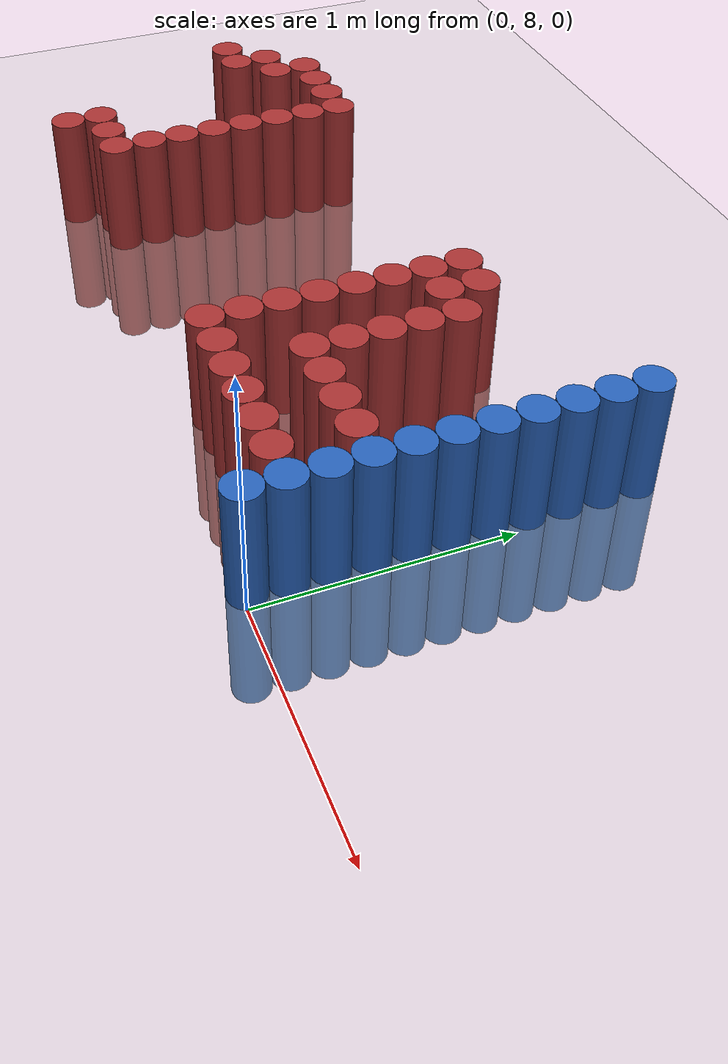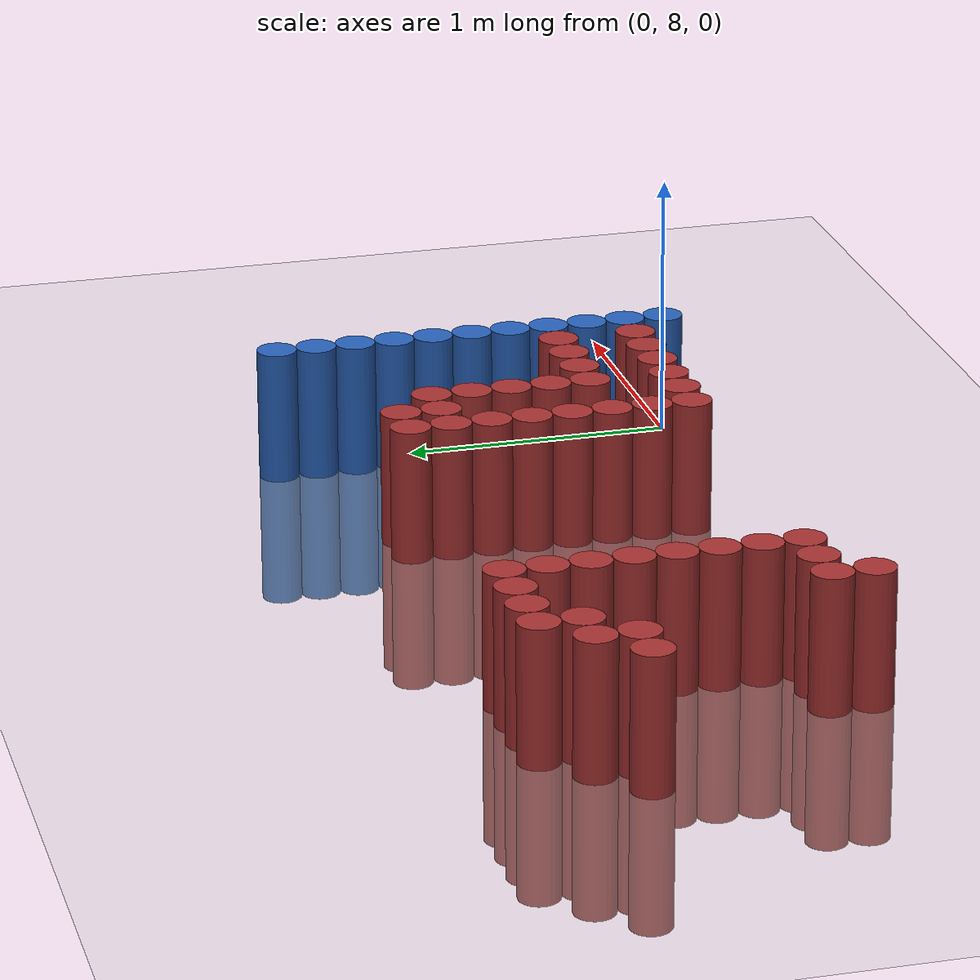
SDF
<sdf version="1.6">
 <world name="default">
  <model name="ground_plane">
   <static>1</static>
   <link name="link">
    <collision name="collision">
     <geometry><plane><normal>0 0 1</normal><size>100 100</size></plane></geometry>
     <surface><friction><ode><mu>100</mu><mu2>50</mu2></ode></friction></surface>
    </collision>
    <visual name="visual">
     <cast_shadows>0</cast_shadows>
     <geometry><plane><normal>0 0 1</normal><size>100 100</size></plane></geometry>
     <material>
      <script><uri>file://media/materials/scripts/gazebo.material</uri><name>Gazebo/Grey</name></script>
     </material>
    </visual>
   </link>
  </model>
  <model name="unit_cylinder_152">
   <static>1</static>
   <pose>-3.075000 8.925000 0.000000 0.000000 0.000000 0.000000</pose>
   <link name="link">
    <inertial>
     <mass>1</mass>
     <inertia><ixx>0.145833</ixx><ixy>0</ixy><ixz>0</ixz><iyy>0.145833</iyy><iyz>0</iyz><izz>0.125</izz></inertia>
    </inertial>
    <collision name="collision">
     <geometry><cylinder><radius>0.075000</radius><length>1</length></cylinder></geometry>
    </collision>
    <visual name="visual">
     <geometry><cylinder><radius>0.075000</radius><length>1</length></cylinder></geometry>
     <material>
      <ambient>0.648000 0.192000 0.192000 1</ambient>
      <diffuse>0.648000 0.192000 0.192000 1</diffuse>
     </material>
     <material>
      <script><name>Gazebo/Grey</name><uri>file://media/materials/scripts/gazebo.material</uri></script>
     </material>
    </visual>
   </link>
  </model>
  <model name="unit_cylinder_154">
   <static>1</static>
   <pose>-2.925000 8.925000 0.000000 0.000000 0.000000 0.000000</pose>
   <link name="link">
    <inertial>
     <mass>1</mass>
     <inertia><ixx>0.145833</ixx><ixy>0</ixy><ixz>0</ixz><iyy>0.145833</iyy><iyz>0</iyz><izz>0.125</izz></inertia>
    </inertial>
    <collision name="collision">
     <geometry><cylinder><radius>0.075000</radius><length>1</length></cylinder></geometry>
    </collision>
    <visual name="visual">
     <geometry><cylinder><radius>0.075000</radius><length>1</length></cylinder></geometry>
     <material>
      <ambient>0.648000 0.192000 0.192000 1</ambient>
      <diffuse>0.648000 0.192000 0.192000 1</diffuse>
     </material>
     <material>
      <script><name>Gazebo/Grey</name><uri>file://media/materials/scripts/gazebo.material</uri></script>
     </material>
    </visual>
   </link>
  </model>
  <model name="unit_cylinder_155">
   <static>1</static>
   <pose>-2.925000 9.075000 0.000000 0.000000 0.000000 0.000000</pose>
   <link name="link">
    <inertial>
     <mass>1</mass>
     <inertia><ixx>0.145833</ixx><ixy>0</ixy><ixz>0</ixz><iyy>0.145833</iyy><iyz>0</iyz><izz>0.125</izz></inertia>
    </inertial>
    <collision name="collision">
     <geometry><cylinder><radius>0.075000</radius><length>1</length></cylinder></geometry>
    </collision>
    <visual name="visual">
     <geometry><cylinder><radius>0.075000</radius><length>1</length></cylinder></geometry>
     <material>
      <ambient>0.648000 0.192000 0.192000 1</ambient>
      <diffuse>0.648000 0.192000 0.192000 1</diffuse>
     </material>
     <material>
      <script><name>Gazebo/Grey</name><uri>file://media/materials/scripts/gazebo.material</uri></script>
     </material>
    </visual>
   </link>
  </model>
  <model name="unit_cylinder_167">
   <static>1</static>
   <pose>-2.775000 9.075000 0.000000 0.000000 0.000000 0.000000</pose>
   <link name="link">
    <inertial>
     <mass>1</mass>
     <inertia><ixx>0.145833</ixx><ixy>0</ixy><ixz>0</ixz><iyy>0.145833</iyy><iyz>0</iyz><izz>0.125</izz></inertia>
    </inertial>
    <collision name="collision">
     <geometry><cylinder><radius>0.075000</radius><length>1</length></cylinder></geometry>
    </collision>
    <visual name="visual">
     <geometry><cylinder><radius>0.075000</radius><length>1</length></cylinder></geometry>
     <material>
      <ambient>0.648000 0.192000 0.192000 1</ambient>
      <diffuse>0.648000 0.192000 0.192000 1</diffuse>
     </material>
     <material>
      <script><name>Gazebo/Grey</name><uri>file://media/materials/scripts/gazebo.material</uri></script>
     </material>
    </visual>
   </link>
  </model>
  <model name="unit_cylinder_168">
   <static>1</static>
   <pose>-2.775000 9.225000 0.000000 0.000000 0.000000 0.000000</pose>
   <link name="link">
    <inertial>
     <mass>1</mass>
     <inertia><ixx>0.145833</ixx><ixy>0</ixy><ixz>0</ixz><iyy>0.145833</iyy><iyz>0</iyz><izz>0.125</izz></inertia>
    </inertial>
    <collision name="collision">
     <geometry><cylinder><radius>0.075000</radius><length>1</length></cylinder></geometry>
    </collision>
    <visual name="visual">
     <geometry><cylinder><radius>0.075000</radius><length>1</length></cylinder></geometry>
     <material>
      <ambient>0.648000 0.192000 0.192000 1</ambient>
      <diffuse>0.648000 0.192000 0.192000 1</diffuse>
     </material>
     <material>
      <script><name>Gazebo/Grey</name><uri>file://media/materials/scripts/gazebo.material</uri></script>
     </material>
    </visual>
   </link>
  </model>
  <model name="unit_cylinder_174">
   <static>1</static>
   <pose>-2.625000 8.025000 0.000000 0.000000 0.000000 0.000000</pose>
   <link name="link">
    <inertial>
     <mass>1</mass>
     <inertia><ixx>0.145833</ixx><ixy>0</ixy><ixz>0</ixz><iyy>0.145833</iyy><iyz>0</iyz><izz>0.125</izz></inertia>
    </inertial>
    <collision name="collision">
     <geometry><cylinder><radius>0.075000</radius><length>1</length></cylinder></geometry>
    </collision>
    <visual name="visual">
     <geometry><cylinder><radius>0.075000</radius><length>1</length></cylinder></geometry>
     <material>
      <ambient>0.648000 0.192000 0.192000 1</ambient>
      <diffuse>0.648000 0.192000 0.192000 1</diffuse>
     </material>
     <material>
      <script><name>Gazebo/Grey</name><uri>file://media/materials/scripts/gazebo.material</uri></script>
     </material>
    </visual>
   </link>
  </model>
  <model name="unit_cylinder_175">
   <static>1</static>
   <pose>-2.625000 8.175000 0.000000 0.000000 0.000000 0.000000</pose>
   <link name="link">
    <inertial>
     <mass>1</mass>
     <inertia><ixx>0.145833</ixx><ixy>0</ixy><ixz>0</ixz><iyy>0.145833</iyy><iyz>0</iyz><izz>0.125</izz></inertia>
    </inertial>
    <collision name="collision">
     <geometry><cylinder><radius>0.075000</radius><length>1</length></cylinder></geometry>
    </collision>
    <visual name="visual">
     <geometry><cylinder><radius>0.075000</radius><length>1</length></cylinder></geometry>
     <material>
      <ambient>0.648000 0.192000 0.192000 1</ambient>
      <diffuse>0.648000 0.192000 0.192000 1</diffuse>
     </material>
     <material>
      <script><name>Gazebo/Grey</name><uri>file://media/materials/scripts/gazebo.material</uri></script>
     </material>
    </visual>
   </link>
  </model>
  <model name="unit_cylinder_176">
   <static>1</static>
   <pose>-2.625000 9.225000 0.000000 0.000000 0.000000 0.000000</pose>
   <link name="link">
    <inertial>
     <mass>1</mass>
     <inertia><ixx>0.145833</ixx><ixy>0</ixy><ixz>0</ixz><iyy>0.145833</iyy><iyz>0</iyz><izz>0.125</izz></inertia>
    </inertial>
    <collision name="collision">
     <geometry><cylinder><radius>0.075000</radius><length>1</length></cylinder></geometry>
    </collision>
    <visual name="visual">
     <geometry><cylinder><radius>0.075000</radius><length>1</length></cylinder></geometry>
     <material>
      <ambient>0.648000 0.192000 0.192000 1</ambient>
      <diffuse>0.648000 0.192000 0.192000 1</diffuse>
     </material>
     <material>
      <script><name>Gazebo/Grey</name><uri>file://media/materials/scripts/gazebo.material</uri></script>
     </material>
    </visual>
   </link>
  </model>
  <model name="unit_cylinder_177">
   <static>1</static>
   <pose>-2.475000 8.175000 0.000000 0.000000 0.000000 0.000000</pose>
   <link name="link">
    <inertial>
     <mass>1</mass>
     <inertia><ixx>0.145833</ixx><ixy>0</ixy><ixz>0</ixz><iyy>0.145833</iyy><iyz>0</iyz><izz>0.125</izz></inertia>
    </inertial>
    <collision name="collision">
     <geometry><cylinder><radius>0.075000</radius><length>1</length></cylinder></geometry>
    </collision>
    <visual name="visual">
     <geometry><cylinder><radius>0.075000</radius><length>1</length></cylinder></geometry>
     <material>
      <ambient>0.648000 0.192000 0.192000 1</ambient>
      <diffuse>0.648000 0.192000 0.192000 1</diffuse>
     </material>
     <material>
      <script><name>Gazebo/Grey</name><uri>file://media/materials/scripts/gazebo.material</uri></script>
     </material>
    </visual>
   </link>
  </model>
  <model name="unit_cylinder_178">
   <static>1</static>
   <pose>-2.475000 9.225000 0.000000 0.000000 0.000000 0.000000</pose>
   <link name="link">
    <inertial>
     <mass>1</mass>
     <inertia><ixx>0.145833</ixx><ixy>0</ixy><ixz>0</ixz><iyy>0.145833</iyy><iyz>0</iyz><izz>0.125</izz></inertia>
    </inertial>
    <collision name="collision">
     <geometry><cylinder><radius>0.075000</radius><length>1</length></cylinder></geometry>
    </collision>
    <visual name="visual">
     <geometry><cylinder><radius>0.075000</radius><length>1</length></cylinder></geometry>
     <material>
      <ambient>0.648000 0.192000 0.192000 1</ambient>
      <diffuse>0.648000 0.192000 0.192000 1</diffuse>
     </material>
     <material>
      <script><name>Gazebo/Grey</name><uri>file://media/materials/scripts/gazebo.material</uri></script>
     </material>
    </visual>
   </link>
  </model>
  <model name="unit_cylinder_179">
   <static>1</static>
   <pose>-2.325000 8.175000 0.000000 0.000000 0.000000 0.000000</pose>
   <link name="link">
    <inertial>
     <mass>1</mass>
     <inertia><ixx>0.145833</ixx><ixy>0</ixy><ixz>0</ixz><iyy>0.145833</iyy><iyz>0</iyz><izz>0.125</izz></inertia>
    </inertial>
    <collision name="collision">
     <geometry><cylinder><radius>0.075000</radius><length>1</length></cylinder></geometry>
    </collision>
    <visual name="visual">
     <geometry><cylinder><radius>0.075000</radius><length>1</length></cylinder></geometry>
     <material>
      <ambient>0.648000 0.192000 0.192000 1</ambient>
      <diffuse>0.648000 0.192000 0.192000 1</diffuse>
     </material>
     <material>
      <script><name>Gazebo/Grey</name><uri>file://media/materials/scripts/gazebo.material</uri></script>
     </material>
    </visual>
   </link>
  </model>
  <model name="unit_cylinder_180">
   <static>1</static>
   <pose>-2.325000 8.325000 0.000000 0.000000 0.000000 0.000000</pose>
   <link name="link">
    <inertial>
     <mass>1</mass>
     <inertia><ixx>0.145833</ixx><ixy>0</ixy><ixz>0</ixz><iyy>0.145833</iyy><iyz>0</iyz><izz>0.125</izz></inertia>
    </inertial>
    <collision name="collision">
     <geometry><cylinder><radius>0.075000</radius><length>1</length></cylinder></geometry>
    </collision>
    <visual name="visual">
     <geometry><cylinder><radius>0.075000</radius><length>1</length></cylinder></geometry>
     <material>
      <ambient>0.648000 0.192000 0.192000 1</ambient>
      <diffuse>0.648000 0.192000 0.192000 1</diffuse>
     </material>
     <material>
      <script><name>Gazebo/Grey</name><uri>file://media/materials/scripts/gazebo.material</uri></script>
     </material>
    </visual>
   </link>
  </model>
  <model name="unit_cylinder_181">
   <static>1</static>
   <pose>-2.325000 8.475000 0.000000 0.000000 0.000000 0.000000</pose>
   <link name="link">
    <inertial>
     <mass>1</mass>
     <inertia><ixx>0.145833</ixx><ixy>0</ixy><ixz>0</ixz><iyy>0.145833</iyy><iyz>0</iyz><izz>0.125</izz></inertia>
    </inertial>
    <collision name="collision">
     <geometry><cylinder><radius>0.075000</radius><length>1</length></cylinder></geometry>
    </collision>
    <visual name="visual">
     <geometry><cylinder><radius>0.075000</radius><length>1</length></cylinder></geometry>
     <material>
      <ambient>0.648000 0.192000 0.192000 1</ambient>
      <diffuse>0.648000 0.192000 0.192000 1</diffuse>
     </material>
     <material>
      <script><name>Gazebo/Grey</name><uri>file://media/materials/scripts/gazebo.material</uri></script>
     </material>
    </visual>
   </link>
  </model>
  <model name="unit_cylinder_182">
   <static>1</static>
   <pose>-2.325000 8.625000 0.000000 0.000000 0.000000 0.000000</pose>
   <link name="link">
    <inertial>
     <mass>1</mass>
     <inertia><ixx>0.145833</ixx><ixy>0</ixy><ixz>0</ixz><iyy>0.145833</iyy><iyz>0</iyz><izz>0.125</izz></inertia>
    </inertial>
    <collision name="collision">
     <geometry><cylinder><radius>0.075000</radius><length>1</length></cylinder></geometry>
    </collision>
    <visual name="visual">
     <geometry><cylinder><radius>0.075000</radius><length>1</length></cylinder></geometry>
     <material>
      <ambient>0.648000 0.192000 0.192000 1</ambient>
      <diffuse>0.648000 0.192000 0.192000 1</diffuse>
     </material>
     <material>
      <script><name>Gazebo/Grey</name><uri>file://media/materials/scripts/gazebo.material</uri></script>
     </material>
    </visual>
   </link>
  </model>
  <model name="unit_cylinder_183">
   <static>1</static>
   <pose>-2.325000 8.775000 0.000000 0.000000 0.000000 0.000000</pose>
   <link name="link">
    <inertial>
     <mass>1</mass>
     <inertia><ixx>0.145833</ixx><ixy>0</ixy><ixz>0</ixz><iyy>0.145833</iyy><iyz>0</iyz><izz>0.125</izz></inertia>
    </inertial>
    <collision name="collision">
     <geometry><cylinder><radius>0.075000</radius><length>1</length></cylinder></geometry>
    </collision>
    <visual name="visual">
     <geometry><cylinder><radius>0.075000</radius><length>1</length></cylinder></geometry>
     <material>
      <ambient>0.648000 0.192000 0.192000 1</ambient>
      <diffuse>0.648000 0.192000 0.192000 1</diffuse>
     </material>
     <material>
      <script><name>Gazebo/Grey</name><uri>file://media/materials/scripts/gazebo.material</uri></script>
     </material>
    </visual>
   </link>
  </model>
  <model name="unit_cylinder_184">
   <static>1</static>
   <pose>-2.325000 8.925000 0.000000 0.000000 0.000000 0.000000</pose>
   <link name="link">
    <inertial>
     <mass>1</mass>
     <inertia><ixx>0.145833</ixx><ixy>0</ixy><ixz>0</ixz><iyy>0.145833</iyy><iyz>0</iyz><izz>0.125</izz></inertia>
    </inertial>
    <collision name="collision">
     <geometry><cylinder><radius>0.075000</radius><length>1</length></cylinder></geometry>
    </collision>
    <visual name="visual">
     <geometry><cylinder><radius>0.075000</radius><length>1</length></cylinder></geometry>
     <material>
      <ambient>0.648000 0.192000 0.192000 1</ambient>
      <diffuse>0.648000 0.192000 0.192000 1</diffuse>
     </material>
     <material>
      <script><name>Gazebo/Grey</name><uri>file://media/materials/scripts/gazebo.material</uri></script>
     </material>
    </visual>
   </link>
  </model>
  <model name="unit_cylinder_185">
   <static>1</static>
   <pose>-2.325000 9.075000 0.000000 0.000000 0.000000 0.000000</pose>
   <link name="link">
    <inertial>
     <mass>1</mass>
     <inertia><ixx>0.145833</ixx><ixy>0</ixy><ixz>0</ixz><iyy>0.145833</iyy><iyz>0</iyz><izz>0.125</izz></inertia>
    </inertial>
    <collision name="collision">
     <geometry><cylinder><radius>0.075000</radius><length>1</length></cylinder></geometry>
    </collision>
    <visual name="visual">
     <geometry><cylinder><radius>0.075000</radius><length>1</length></cylinder></geometry>
     <material>
      <ambient>0.648000 0.192000 0.192000 1</ambient>
      <diffuse>0.648000 0.192000 0.192000 1</diffuse>
     </material>
     <material>
      <script><name>Gazebo/Grey</name><uri>file://media/materials/scripts/gazebo.material</uri></script>
     </material>
    </visual>
   </link>
  </model>
  <model name="unit_cylinder_186">
   <static>1</static>
   <pose>-2.325000 9.225000 0.000000 0.000000 0.000000 0.000000</pose>
   <link name="link">
    <inertial>
     <mass>1</mass>
     <inertia><ixx>0.145833</ixx><ixy>0</ixy><ixz>0</ixz><iyy>0.145833</iyy><iyz>0</iyz><izz>0.125</izz></inertia>
    </inertial>
    <collision name="collision">
     <geometry><cylinder><radius>0.075000</radius><length>1</length></cylinder></geometry>
    </collision>
    <visual name="visual">
     <geometry><cylinder><radius>0.075000</radius><length>1</length></cylinder></geometry>
     <material>
      <ambient>0.648000 0.192000 0.192000 1</ambient>
      <diffuse>0.648000 0.192000 0.192000 1</diffuse>
     </material>
     <material>
      <script><name>Gazebo/Grey</name><uri>file://media/materials/scripts/gazebo.material</uri></script>
     </material>
    </visual>
   </link>
  </model>
  <model name="unit_cylinder_187">
   <static>1</static>
   <pose>-0.975000 8.175000 0.000000 0.000000 0.000000 0.000000</pose>
   <link name="link">
    <inertial>
     <mass>1</mass>
     <inertia><ixx>0.145833</ixx><ixy>0</ixy><ixz>0</ixz><iyy>0.145833</iyy><iyz>0</iyz><izz>0.125</izz></inertia>
    </inertial>
    <collision name="collision">
     <geometry><cylinder><radius>0.075000</radius><length>1</length></cylinder></geometry>
    </collision>
    <visual name="visual">
     <geometry><cylinder><radius>0.075000</radius><length>1</length></cylinder></geometry>
     <material>
      <ambient>0.648000 0.192000 0.192000 1</ambient>
      <diffuse>0.648000 0.192000 0.192000 1</diffuse>
     </material>
     <material>
      <script><name>Gazebo/Grey</name><uri>file://media/materials/scripts/gazebo.material</uri></script>
     </material>
    </visual>
   </link>
  </model>
  <model name="unit_cylinder_188">
   <static>1</static>
   <pose>-0.975000 8.325000 0.000000 0.000000 0.000000 0.000000</pose>
   <link name="link">
    <inertial>
     <mass>1</mass>
     <inertia><ixx>0.145833</ixx><ixy>0</ixy><ixz>0</ixz><iyy>0.145833</iyy><iyz>0</iyz><izz>0.125</izz></inertia>
    </inertial>
    <collision name="collision">
     <geometry><cylinder><radius>0.075000</radius><length>1</length></cylinder></geometry>
    </collision>
    <visual name="visual">
     <geometry><cylinder><radius>0.075000</radius><length>1</length></cylinder></geometry>
     <material>
      <ambient>0.648000 0.192000 0.192000 1</ambient>
      <diffuse>0.648000 0.192000 0.192000 1</diffuse>
     </material>
     <material>
      <script><name>Gazebo/Grey</name><uri>file://media/materials/scripts/gazebo.material</uri></script>
     </material>
    </visual>
   </link>
  </model>
  <model name="unit_cylinder_189">
   <static>1</static>
   <pose>-0.975000 8.475000 0.000000 0.000000 0.000000 0.000000</pose>
   <link name="link">
    <inertial>
     <mass>1</mass>
     <inertia><ixx>0.145833</ixx><ixy>0</ixy><ixz>0</ixz><iyy>0.145833</iyy><iyz>0</iyz><izz>0.125</izz></inertia>
    </inertial>
    <collision name="collision">
     <geometry><cylinder><radius>0.075000</radius><length>1</length></cylinder></geometry>
    </collision>
    <visual name="visual">
     <geometry><cylinder><radius>0.075000</radius><length>1</length></cylinder></geometry>
     <material>
      <ambient>0.648000 0.192000 0.192000 1</ambient>
      <diffuse>0.648000 0.192000 0.192000 1</diffuse>
     </material>
     <material>
      <script><name>Gazebo/Grey</name><uri>file://media/materials/scripts/gazebo.material</uri></script>
     </material>
    </visual>
   </link>
  </model>
  <model name="unit_cylinder_190">
   <static>1</static>
   <pose>-0.975000 8.625000 0.000000 0.000000 0.000000 0.000000</pose>
   <link name="link">
    <inertial>
     <mass>1</mass>
     <inertia><ixx>0.145833</ixx><ixy>0</ixy><ixz>0</ixz><iyy>0.145833</iyy><iyz>0</iyz><izz>0.125</izz></inertia>
    </inertial>
    <collision name="collision">
     <geometry><cylinder><radius>0.075000</radius><length>1</length></cylinder></geometry>
    </collision>
    <visual name="visual">
     <geometry><cylinder><radius>0.075000</radius><length>1</length></cylinder></geometry>
     <material>
      <ambient>0.648000 0.192000 0.192000 1</ambient>
      <diffuse>0.648000 0.192000 0.192000 1</diffuse>
     </material>
     <material>
      <script><name>Gazebo/Grey</name><uri>file://media/materials/scripts/gazebo.material</uri></script>
     </material>
    </visual>
   </link>
  </model>
  <model name="unit_cylinder_191">
   <static>1</static>
   <pose>-0.975000 8.775000 0.000000 0.000000 0.000000 0.000000</pose>
   <link name="link">
    <inertial>
     <mass>1</mass>
     <inertia><ixx>0.145833</ixx><ixy>0</ixy><ixz>0</ixz><iyy>0.145833</iyy><iyz>0</iyz><izz>0.125</izz></inertia>
    </inertial>
    <collision name="collision">
     <geometry><cylinder><radius>0.075000</radius><length>1</length></cylinder></geometry>
    </collision>
    <visual name="visual">
     <geometry><cylinder><radius>0.075000</radius><length>1</length></cylinder></geometry>
     <material>
      <ambient>0.648000 0.192000 0.192000 1</ambient>
      <diffuse>0.648000 0.192000 0.192000 1</diffuse>
     </material>
     <material>
      <script><name>Gazebo/Grey</name><uri>file://media/materials/scripts/gazebo.material</uri></script>
     </material>
    </visual>
   </link>
  </model>
  <model name="unit_cylinder_192">
   <static>1</static>
   <pose>-0.975000 8.925000 0.000000 0.000000 0.000000 0.000000</pose>
   <link name="link">
    <inertial>
     <mass>1</mass>
     <inertia><ixx>0.145833</ixx><ixy>0</ixy><ixz>0</ixz><iyy>0.145833</iyy><iyz>0</iyz><izz>0.125</izz></inertia>
    </inertial>
    <collision name="collision">
     <geometry><cylinder><radius>0.075000</radius><length>1</length></cylinder></geometry>
    </collision>
    <visual name="visual">
     <geometry><cylinder><radius>0.075000</radius><length>1</length></cylinder></geometry>
     <material>
      <ambient>0.648000 0.192000 0.192000 1</ambient>
      <diffuse>0.648000 0.192000 0.192000 1</diffuse>
     </material>
     <material>
      <script><name>Gazebo/Grey</name><uri>file://media/materials/scripts/gazebo.material</uri></script>
     </material>
    </visual>
   </link>
  </model>
  <model name="unit_cylinder_193">
   <static>1</static>
   <pose>-0.975000 9.075000 0.000000 0.000000 0.000000 0.000000</pose>
   <link name="link">
    <inertial>
     <mass>1</mass>
     <inertia><ixx>0.145833</ixx><ixy>0</ixy><ixz>0</ixz><iyy>0.145833</iyy><iyz>0</iyz><izz>0.125</izz></inertia>
    </inertial>
    <collision name="collision">
     <geometry><cylinder><radius>0.075000</radius><length>1</length></cylinder></geometry>
    </collision>
    <visual name="visual">
     <geometry><cylinder><radius>0.075000</radius><length>1</length></cylinder></geometry>
     <material>
      <ambient>0.648000 0.192000 0.192000 1</ambient>
      <diffuse>0.648000 0.192000 0.192000 1</diffuse>
     </material>
     <material>
      <script><name>Gazebo/Grey</name><uri>file://media/materials/scripts/gazebo.material</uri></script>
     </material>
    </visual>
   </link>
  </model>
  <model name="unit_cylinder_194">
   <static>1</static>
   <pose>-0.975000 9.225000 0.000000 0.000000 0.000000 0.000000</pose>
   <link name="link">
    <inertial>
     <mass>1</mass>
     <inertia><ixx>0.145833</ixx><ixy>0</ixy><ixz>0</ixz><iyy>0.145833</iyy><iyz>0</iyz><izz>0.125</izz></inertia>
    </inertial>
    <collision name="collision">
     <geometry><cylinder><radius>0.075000</radius><length>1</length></cylinder></geometry>
    </collision>
    <visual name="visual">
     <geometry><cylinder><radius>0.075000</radius><length>1</length></cylinder></geometry>
     <material>
      <ambient>0.648000 0.192000 0.192000 1</ambient>
      <diffuse>0.648000 0.192000 0.192000 1</diffuse>
     </material>
     <material>
      <script><name>Gazebo/Grey</name><uri>file://media/materials/scripts/gazebo.material</uri></script>
     </material>
    </visual>
   </link>
  </model>
  <model name="unit_cylinder_200">
   <static>1</static>
   <pose>-0.825000 8.175000 0.000000 0.000000 0.000000 0.000000</pose>
   <link name="link">
    <inertial>
     <mass>1</mass>
     <inertia><ixx>0.145833</ixx><ixy>0</ixy><ixz>0</ixz><iyy>0.145833</iyy><iyz>0</iyz><izz>0.125</izz></inertia>
    </inertial>
    <collision name="collision">
     <geometry><cylinder><radius>0.075000</radius><length>1</length></cylinder></geometry>
    </collision>
    <visual name="visual">
     <geometry><cylinder><radius>0.075000</radius><length>1</length></cylinder></geometry>
     <material>
      <ambient>0.648000 0.192000 0.192000 1</ambient>
      <diffuse>0.648000 0.192000 0.192000 1</diffuse>
     </material>
     <material>
      <script><name>Gazebo/Grey</name><uri>file://media/materials/scripts/gazebo.material</uri></script>
     </material>
    </visual>
   </link>
  </model>
  <model name="unit_cylinder_201">
   <static>1</static>
   <pose>-0.825000 9.075000 0.000000 0.000000 0.000000 0.000000</pose>
   <link name="link">
    <inertial>
     <mass>1</mass>
     <inertia><ixx>0.145833</ixx><ixy>0</ixy><ixz>0</ixz><iyy>0.145833</iyy><iyz>0</iyz><izz>0.125</izz></inertia>
    </inertial>
    <collision name="collision">
     <geometry><cylinder><radius>0.075000</radius><length>1</length></cylinder></geometry>
    </collision>
    <visual name="visual">
     <geometry><cylinder><radius>0.075000</radius><length>1</length></cylinder></geometry>
     <material>
      <ambient>0.648000 0.192000 0.192000 1</ambient>
      <diffuse>0.648000 0.192000 0.192000 1</diffuse>
     </material>
     <material>
      <script><name>Gazebo/Grey</name><uri>file://media/materials/scripts/gazebo.material</uri></script>
     </material>
    </visual>
   </link>
  </model>
  <model name="unit_cylinder_202">
   <static>1</static>
   <pose>-0.825000 9.225000 0.000000 0.000000 0.000000 0.000000</pose>
   <link name="link">
    <inertial>
     <mass>1</mass>
     <inertia><ixx>0.145833</ixx><ixy>0</ixy><ixz>0</ixz><iyy>0.145833</iyy><iyz>0</iyz><izz>0.125</izz></inertia>
    </inertial>
    <collision name="collision">
     <geometry><cylinder><radius>0.075000</radius><length>1</length></cylinder></geometry>
    </collision>
    <visual name="visual">
     <geometry><cylinder><radius>0.075000</radius><length>1</length></cylinder></geometry>
     <material>
      <ambient>0.648000 0.192000 0.192000 1</ambient>
      <diffuse>0.648000 0.192000 0.192000 1</diffuse>
     </material>
     <material>
      <script><name>Gazebo/Grey</name><uri>file://media/materials/scripts/gazebo.material</uri></script>
     </material>
    </visual>
   </link>
  </model>
  <model name="unit_cylinder_205">
   <static>1</static>
   <pose>-0.675000 8.175000 0.000000 0.000000 0.000000 0.000000</pose>
   <link name="link">
    <inertial>
     <mass>1</mass>
     <inertia><ixx>0.145833</ixx><ixy>0</ixy><ixz>0</ixz><iyy>0.145833</iyy><iyz>0</iyz><izz>0.125</izz></inertia>
    </inertial>
    <collision name="collision">
     <geometry><cylinder><radius>0.075000</radius><length>1</length></cylinder></geometry>
    </collision>
    <visual name="visual">
     <geometry><cylinder><radius>0.075000</radius><length>1</length></cylinder></geometry>
     <material>
      <ambient>0.648000 0.192000 0.192000 1</ambient>
      <diffuse>0.648000 0.192000 0.192000 1</diffuse>
     </material>
     <material>
      <script><name>Gazebo/Grey</name><uri>file://media/materials/scripts/gazebo.material</uri></script>
     </material>
    </visual>
   </link>
  </model>
  <model name="unit_cylinder_206">
   <static>1</static>
   <pose>-0.675000 8.475000 0.000000 0.000000 0.000000 0.000000</pose>
   <link name="link">
    <inertial>
     <mass>1</mass>
     <inertia><ixx>0.145833</ixx><ixy>0</ixy><ixz>0</ixz><iyy>0.145833</iyy><iyz>0</iyz><izz>0.125</izz></inertia>
    </inertial>
    <collision name="collision">
     <geometry><cylinder><radius>0.075000</radius><length>1</length></cylinder></geometry>
    </collision>
    <visual name="visual">
     <geometry><cylinder><radius>0.075000</radius><length>1</length></cylinder></geometry>
     <material>
      <ambient>0.648000 0.192000 0.192000 1</ambient>
      <diffuse>0.648000 0.192000 0.192000 1</diffuse>
     </material>
     <material>
      <script><name>Gazebo/Grey</name><uri>file://media/materials/scripts/gazebo.material</uri></script>
     </material>
    </visual>
   </link>
  </model>
  <model name="unit_cylinder_207">
   <static>1</static>
   <pose>-0.675000 8.625000 0.000000 0.000000 0.000000 0.000000</pose>
   <link name="link">
    <inertial>
     <mass>1</mass>
     <inertia><ixx>0.145833</ixx><ixy>0</ixy><ixz>0</ixz><iyy>0.145833</iyy><iyz>0</iyz><izz>0.125</izz></inertia>
    </inertial>
    <collision name="collision">
     <geometry><cylinder><radius>0.075000</radius><length>1</length></cylinder></geometry>
    </collision>
    <visual name="visual">
     <geometry><cylinder><radius>0.075000</radius><length>1</length></cylinder></geometry>
     <material>
      <ambient>0.648000 0.192000 0.192000 1</ambient>
      <diffuse>0.648000 0.192000 0.192000 1</diffuse>
     </material>
     <material>
      <script><name>Gazebo/Grey</name><uri>file://media/materials/scripts/gazebo.material</uri></script>
     </material>
    </visual>
   </link>
  </model>
  <model name="unit_cylinder_208">
   <static>1</static>
   <pose>-0.675000 8.775000 0.000000 0.000000 0.000000 0.000000</pose>
   <link name="link">
    <inertial>
     <mass>1</mass>
     <inertia><ixx>0.145833</ixx><ixy>0</ixy><ixz>0</ixz><iyy>0.145833</iyy><iyz>0</iyz><izz>0.125</izz></inertia>
    </inertial>
    <collision name="collision">
     <geometry><cylinder><radius>0.075000</radius><length>1</length></cylinder></geometry>
    </collision>
    <visual name="visual">
     <geometry><cylinder><radius>0.075000</radius><length>1</length></cylinder></geometry>
     <material>
      <ambient>0.648000 0.192000 0.192000 1</ambient>
      <diffuse>0.648000 0.192000 0.192000 1</diffuse>
     </material>
     <material>
      <script><name>Gazebo/Grey</name><uri>file://media/materials/scripts/gazebo.material</uri></script>
     </material>
    </visual>
   </link>
  </model>
  <model name="unit_cylinder_209">
   <static>1</static>
   <pose>-0.675000 8.925000 0.000000 0.000000 0.000000 0.000000</pose>
   <link name="link">
    <inertial>
     <mass>1</mass>
     <inertia><ixx>0.145833</ixx><ixy>0</ixy><ixz>0</ixz><iyy>0.145833</iyy><iyz>0</iyz><izz>0.125</izz></inertia>
    </inertial>
    <collision name="collision">
     <geometry><cylinder><radius>0.075000</radius><length>1</length></cylinder></geometry>
    </collision>
    <visual name="visual">
     <geometry><cylinder><radius>0.075000</radius><length>1</length></cylinder></geometry>
     <material>
      <ambient>0.648000 0.192000 0.192000 1</ambient>
      <diffuse>0.648000 0.192000 0.192000 1</diffuse>
     </material>
     <material>
      <script><name>Gazebo/Grey</name><uri>file://media/materials/scripts/gazebo.material</uri></script>
     </material>
    </visual>
   </link>
  </model>
  <model name="unit_cylinder_210">
   <static>1</static>
   <pose>-0.675000 9.075000 0.000000 0.000000 0.000000 0.000000</pose>
   <link name="link">
    <inertial>
     <mass>1</mass>
     <inertia><ixx>0.145833</ixx><ixy>0</ixy><ixz>0</ixz><iyy>0.145833</iyy><iyz>0</iyz><izz>0.125</izz></inertia>
    </inertial>
    <collision name="collision">
     <geometry><cylinder><radius>0.075000</radius><length>1</length></cylinder></geometry>
    </collision>
    <visual name="visual">
     <geometry><cylinder><radius>0.075000</radius><length>1</length></cylinder></geometry>
     <material>
      <ambient>0.648000 0.192000 0.192000 1</ambient>
      <diffuse>0.648000 0.192000 0.192000 1</diffuse>
     </material>
     <material>
      <script><name>Gazebo/Grey</name><uri>file://media/materials/scripts/gazebo.material</uri></script>
     </material>
    </visual>
   </link>
  </model>
  <model name="unit_cylinder_214">
   <static>1</static>
   <pose>-0.525000 8.175000 0.000000 0.000000 0.000000 0.000000</pose>
   <link name="link">
    <inertial>
     <mass>1</mass>
     <inertia><ixx>0.145833</ixx><ixy>0</ixy><ixz>0</ixz><iyy>0.145833</iyy><iyz>0</iyz><izz>0.125</izz></inertia>
    </inertial>
    <collision name="collision">
     <geometry><cylinder><radius>0.075000</radius><length>1</length></cylinder></geometry>
    </collision>
    <visual name="visual">
     <geometry><cylinder><radius>0.075000</radius><length>1</length></cylinder></geometry>
     <material>
      <ambient>0.648000 0.192000 0.192000 1</ambient>
      <diffuse>0.648000 0.192000 0.192000 1</diffuse>
     </material>
     <material>
      <script><name>Gazebo/Grey</name><uri>file://media/materials/scripts/gazebo.material</uri></script>
     </material>
    </visual>
   </link>
  </model>
  <model name="unit_cylinder_215">
   <static>1</static>
   <pose>-0.525000 8.475000 0.000000 0.000000 0.000000 0.000000</pose>
   <link name="link">
    <inertial>
     <mass>1</mass>
     <inertia><ixx>0.145833</ixx><ixy>0</ixy><ixz>0</ixz><iyy>0.145833</iyy><iyz>0</iyz><izz>0.125</izz></inertia>
    </inertial>
    <collision name="collision">
     <geometry><cylinder><radius>0.075000</radius><length>1</length></cylinder></geometry>
    </collision>
    <visual name="visual">
     <geometry><cylinder><radius>0.075000</radius><length>1</length></cylinder></geometry>
     <material>
      <ambient>0.648000 0.192000 0.192000 1</ambient>
      <diffuse>0.648000 0.192000 0.192000 1</diffuse>
     </material>
     <material>
      <script><name>Gazebo/Grey</name><uri>file://media/materials/scripts/gazebo.material</uri></script>
     </material>
    </visual>
   </link>
  </model>
  <model name="unit_cylinder_221">
   <static>1</static>
   <pose>-0.375000 8.175000 0.000000 0.000000 0.000000 0.000000</pose>
   <link name="link">
    <inertial>
     <mass>1</mass>
     <inertia><ixx>0.145833</ixx><ixy>0</ixy><ixz>0</ixz><iyy>0.145833</iyy><iyz>0</iyz><izz>0.125</izz></inertia>
    </inertial>
    <collision name="collision">
     <geometry><cylinder><radius>0.075000</radius><length>1</length></cylinder></geometry>
    </collision>
    <visual name="visual">
     <geometry><cylinder><radius>0.075000</radius><length>1</length></cylinder></geometry>
     <material>
      <ambient>0.648000 0.192000 0.192000 1</ambient>
      <diffuse>0.648000 0.192000 0.192000 1</diffuse>
     </material>
     <material>
      <script><name>Gazebo/Grey</name><uri>file://media/materials/scripts/gazebo.material</uri></script>
     </material>
    </visual>
   </link>
  </model>
  <model name="unit_cylinder_222">
   <static>1</static>
   <pose>-0.375000 8.475000 0.000000 0.000000 0.000000 0.000000</pose>
   <link name="link">
    <inertial>
     <mass>1</mass>
     <inertia><ixx>0.145833</ixx><ixy>0</ixy><ixz>0</ixz><iyy>0.145833</iyy><iyz>0</iyz><izz>0.125</izz></inertia>
    </inertial>
    <collision name="collision">
     <geometry><cylinder><radius>0.075000</radius><length>1</length></cylinder></geometry>
    </collision>
    <visual name="visual">
     <geometry><cylinder><radius>0.075000</radius><length>1</length></cylinder></geometry>
     <material>
      <ambient>0.648000 0.192000 0.192000 1</ambient>
      <diffuse>0.648000 0.192000 0.192000 1</diffuse>
     </material>
     <material>
      <script><name>Gazebo/Grey</name><uri>file://media/materials/scripts/gazebo.material</uri></script>
     </material>
    </visual>
   </link>
  </model>
  <model name="unit_cylinder_227">
   <static>1</static>
   <pose>-0.225000 8.175000 0.000000 0.000000 0.000000 0.000000</pose>
   <link name="link">
    <inertial>
     <mass>1</mass>
     <inertia><ixx>0.145833</ixx><ixy>0</ixy><ixz>0</ixz><iyy>0.145833</iyy><iyz>0</iyz><izz>0.125</izz></inertia>
    </inertial>
    <collision name="collision">
     <geometry><cylinder><radius>0.075000</radius><length>1</length></cylinder></geometry>
    </collision>
    <visual name="visual">
     <geometry><cylinder><radius>0.075000</radius><length>1</length></cylinder></geometry>
     <material>
      <ambient>0.648000 0.192000 0.192000 1</ambient>
      <diffuse>0.648000 0.192000 0.192000 1</diffuse>
     </material>
     <material>
      <script><name>Gazebo/Grey</name><uri>file://media/materials/scripts/gazebo.material</uri></script>
     </material>
    </visual>
   </link>
  </model>
  <model name="unit_cylinder_228">
   <static>1</static>
   <pose>-0.225000 8.475000 0.000000 0.000000 0.000000 0.000000</pose>
   <link name="link">
    <inertial>
     <mass>1</mass>
     <inertia><ixx>0.145833</ixx><ixy>0</ixy><ixz>0</ixz><iyy>0.145833</iyy><iyz>0</iyz><izz>0.125</izz></inertia>
    </inertial>
    <collision name="collision">
     <geometry><cylinder><radius>0.075000</radius><length>1</length></cylinder></geometry>
    </collision>
    <visual name="visual">
     <geometry><cylinder><radius>0.075000</radius><length>1</length></cylinder></geometry>
     <material>
      <ambient>0.648000 0.192000 0.192000 1</ambient>
      <diffuse>0.648000 0.192000 0.192000 1</diffuse>
     </material>
     <material>
      <script><name>Gazebo/Grey</name><uri>file://media/materials/scripts/gazebo.material</uri></script>
     </material>
    </visual>
   </link>
  </model>
  <model name="unit_cylinder_248">
   <static>1</static>
   <pose>-0.075000 8.025000 0.000000 0.000000 0.000000 0.000000</pose>
   <link name="link">
    <inertial>
     <mass>1</mass>
     <inertia><ixx>0.145833</ixx><ixy>0</ixy><ixz>0</ixz><iyy>0.145833</iyy><iyz>0</iyz><izz>0.125</izz></inertia>
    </inertial>
    <collision name="collision">
     <geometry><cylinder><radius>0.075000</radius><length>1</length></cylinder></geometry>
    </collision>
    <visual name="visual">
     <geometry><cylinder><radius>0.075000</radius><length>1</length></cylinder></geometry>
     <material>
      <ambient>0.152000 0.379000 0.720000 1</ambient>
      <diffuse>0.152000 0.379000 0.720000 1</diffuse>
     </material>
     <material>
      <script><name>Gazebo/Grey</name><uri>file://media/materials/scripts/gazebo.material</uri></script>
     </material>
    </visual>
   </link>
  </model>
  <model name="unit_cylinder_249">
   <static>1</static>
   <pose>-0.075000 8.175000 0.000000 0.000000 0.000000 0.000000</pose>
   <link name="link">
    <inertial>
     <mass>1</mass>
     <inertia><ixx>0.145833</ixx><ixy>0</ixy><ixz>0</ixz><iyy>0.145833</iyy><iyz>0</iyz><izz>0.125</izz></inertia>
    </inertial>
    <collision name="collision">
     <geometry><cylinder><radius>0.075000</radius><length>1</length></cylinder></geometry>
    </collision>
    <visual name="visual">
     <geometry><cylinder><radius>0.075000</radius><length>1</length></cylinder></geometry>
     <material>
      <ambient>0.152000 0.379000 0.720000 1</ambient>
      <diffuse>0.152000 0.379000 0.720000 1</diffuse>
     </material>
     <material>
      <script><name>Gazebo/Grey</name><uri>file://media/materials/scripts/gazebo.material</uri></script>
     </material>
    </visual>
   </link>
  </model>
  <model name="unit_cylinder_250">
   <static>1</static>
   <pose>-0.075000 8.325000 0.000000 0.000000 0.000000 0.000000</pose>
   <link name="link">
    <inertial>
     <mass>1</mass>
     <inertia><ixx>0.145833</ixx><ixy>0</ixy><ixz>0</ixz><iyy>0.145833</iyy><iyz>0</iyz><izz>0.125</izz></inertia>
    </inertial>
    <collision name="collision">
     <geometry><cylinder><radius>0.075000</radius><length>1</length></cylinder></geometry>
    </collision>
    <visual name="visual">
     <geometry><cylinder><radius>0.075000</radius><length>1</length></cylinder></geometry>
     <material>
      <ambient>0.152000 0.379000 0.720000 1</ambient>
      <diffuse>0.152000 0.379000 0.720000 1</diffuse>
     </material>
     <material>
      <script><name>Gazebo/Grey</name><uri>file://media/materials/scripts/gazebo.material</uri></script>
     </material>
    </visual>
   </link>
  </model>
  <model name="unit_cylinder_251">
   <static>1</static>
   <pose>-0.075000 8.475000 0.000000 0.000000 0.000000 0.000000</pose>
   <link name="link">
    <inertial>
     <mass>1</mass>
     <inertia><ixx>0.145833</ixx><ixy>0</ixy><ixz>0</ixz><iyy>0.145833</iyy><iyz>0</iyz><izz>0.125</izz></inertia>
    </inertial>
    <collision name="collision">
     <geometry><cylinder><radius>0.075000</radius><length>1</length></cylinder></geometry>
    </collision>
    <visual name="visual">
     <geometry><cylinder><radius>0.075000</radius><length>1</length></cylinder></geometry>
     <material>
      <ambient>0.152000 0.379000 0.720000 1</ambient>
      <diffuse>0.152000 0.379000 0.720000 1</diffuse>
     </material>
     <material>
      <script><name>Gazebo/Grey</name><uri>file://media/materials/scripts/gazebo.material</uri></script>
     </material>
    </visual>
   </link>
  </model>
  <model name="unit_cylinder_252">
   <static>1</static>
   <pose>-0.075000 8.625000 0.000000 0.000000 0.000000 0.000000</pose>
   <link name="link">
    <inertial>
     <mass>1</mass>
     <inertia><ixx>0.145833</ixx><ixy>0</ixy><ixz>0</ixz><iyy>0.145833</iyy><iyz>0</iyz><izz>0.125</izz></inertia>
    </inertial>
    <collision name="collision">
     <geometry><cylinder><radius>0.075000</radius><length>1</length></cylinder></geometry>
    </collision>
    <visual name="visual">
     <geometry><cylinder><radius>0.075000</radius><length>1</length></cylinder></geometry>
     <material>
      <ambient>0.152000 0.379000 0.720000 1</ambient>
      <diffuse>0.152000 0.379000 0.720000 1</diffuse>
     </material>
     <material>
      <script><name>Gazebo/Grey</name><uri>file://media/materials/scripts/gazebo.material</uri></script>
     </material>
    </visual>
   </link>
  </model>
  <model name="unit_cylinder_253">
   <static>1</static>
   <pose>-0.075000 8.775000 0.000000 0.000000 0.000000 0.000000</pose>
   <link name="link">
    <inertial>
     <mass>1</mass>
     <inertia><ixx>0.145833</ixx><ixy>0</ixy><ixz>0</ixz><iyy>0.145833</iyy><iyz>0</iyz><izz>0.125</izz></inertia>
    </inertial>
    <collision name="collision">
     <geometry><cylinder><radius>0.075000</radius><length>1</length></cylinder></geometry>
    </collision>
    <visual name="visual">
     <geometry><cylinder><radius>0.075000</radius><length>1</length></cylinder></geometry>
     <material>
      <ambient>0.152000 0.379000 0.720000 1</ambient>
      <diffuse>0.152000 0.379000 0.720000 1</diffuse>
     </material>
     <material>
      <script><name>Gazebo/Grey</name><uri>file://media/materials/scripts/gazebo.material</uri></script>
     </material>
    </visual>
   </link>
  </model>
  <model name="unit_cylinder_254">
   <static>1</static>
   <pose>-0.075000 8.925000 0.000000 0.000000 0.000000 0.000000</pose>
   <link name="link">
    <inertial>
     <mass>1</mass>
     <inertia><ixx>0.145833</ixx><ixy>0</ixy><ixz>0</ixz><iyy>0.145833</iyy><iyz>0</iyz><izz>0.125</izz></inertia>
    </inertial>
    <collision name="collision">
     <geometry><cylinder><radius>0.075000</radius><length>1</length></cylinder></geometry>
    </collision>
    <visual name="visual">
     <geometry><cylinder><radius>0.075000</radius><length>1</length></cylinder></geometry>
     <material>
      <ambient>0.152000 0.379000 0.720000 1</ambient>
      <diffuse>0.152000 0.379000 0.720000 1</diffuse>
     </material>
     <material>
      <script><name>Gazebo/Grey</name><uri>file://media/materials/scripts/gazebo.material</uri></script>
     </material>
    </visual>
   </link>
  </model>
  <model name="unit_cylinder_255">
   <static>1</static>
   <pose>-0.075000 9.075000 0.000000 0.000000 0.000000 0.000000</pose>
   <link name="link">
    <inertial>
     <mass>1</mass>
     <inertia><ixx>0.145833</ixx><ixy>0</ixy><ixz>0</ixz><iyy>0.145833</iyy><iyz>0</iyz><izz>0.125</izz></inertia>
    </inertial>
    <collision name="collision">
     <geometry><cylinder><radius>0.075000</radius><length>1</length></cylinder></geometry>
    </collision>
    <visual name="visual">
     <geometry><cylinder><radius>0.075000</radius><length>1</length></cylinder></geometry>
     <material>
      <ambient>0.152000 0.379000 0.720000 1</ambient>
      <diffuse>0.152000 0.379000 0.720000 1</diffuse>
     </material>
     <material>
      <script><name>Gazebo/Grey</name><uri>file://media/materials/scripts/gazebo.material</uri></script>
     </material>
    </visual>
   </link>
  </model>
  <model name="unit_cylinder_256">
   <static>1</static>
   <pose>-0.075000 9.225000 0.000000 0.000000 0.000000 0.000000</pose>
   <link name="link">
    <inertial>
     <mass>1</mass>
     <inertia><ixx>0.145833</ixx><ixy>0</ixy><ixz>0</ixz><iyy>0.145833</iyy><iyz>0</iyz><izz>0.125</izz></inertia>
    </inertial>
    <collision name="collision">
     <geometry><cylinder><radius>0.075000</radius><length>1</length></cylinder></geometry>
    </collision>
    <visual name="visual">
     <geometry><cylinder><radius>0.075000</radius><length>1</length></cylinder></geometry>
     <material>
      <ambient>0.152000 0.379000 0.720000 1</ambient>
      <diffuse>0.152000 0.379000 0.720000 1</diffuse>
     </material>
     <material>
      <script><name>Gazebo/Grey</name><uri>file://media/materials/scripts/gazebo.material</uri></script>
     </material>
    </visual>
   </link>
  </model>
  <model name="unit_cylinder_257">
   <static>1</static>
   <pose>-0.075000 9.375000 0.000000 0.000000 0.000000 0.000000</pose>
   <link name="link">
    <inertial>
     <mass>1</mass>
     <inertia><ixx>0.145833</ixx><ixy>0</ixy><ixz>0</ixz><iyy>0.145833</iyy><iyz>0</iyz><izz>0.125</izz></inertia>
    </inertial>
    <collision name="collision">
     <geometry><cylinder><radius>0.075000</radius><length>1</length></cylinder></geometry>
    </collision>
    <visual name="visual">
     <geometry><cylinder><radius>0.075000</radius><length>1</length></cylinder></geometry>
     <material>
      <ambient>0.152000 0.379000 0.720000 1</ambient>
      <diffuse>0.152000 0.379000 0.720000 1</diffuse>
     </material>
     <material>
      <script><name>Gazebo/Grey</name><uri>file://media/materials/scripts/gazebo.material</uri></script>
     </material>
    </visual>
   </link>
  </model>
  <model name="unit_cylinder_258">
   <static>1</static>
   <pose>-0.075000 9.525000 0.000000 0.000000 0.000000 0.000000</pose>
   <link name="link">
    <inertial>
     <mass>1</mass>
     <inertia><ixx>0.145833</ixx><ixy>0</ixy><ixz>0</ixz><iyy>0.145833</iyy><iyz>0</iyz><izz>0.125</izz></inertia>
    </inertial>
    <collision name="collision">
     <geometry><cylinder><radius>0.075000</radius><length>1</length></cylinder></geometry>
    </collision>
    <visual name="visual">
     <geometry><cylinder><radius>0.075000</radius><length>1</length></cylinder></geometry>
     <material>
      <ambient>0.152000 0.379000 0.720000 1</ambient>
      <diffuse>0.152000 0.379000 0.720000 1</diffuse>
     </material>
     <material>
      <script><name>Gazebo/Grey</name><uri>file://media/materials/scripts/gazebo.material</uri></script>
     </material>
    </visual>
   </link>
  </model>
 </world>
</sdf>
